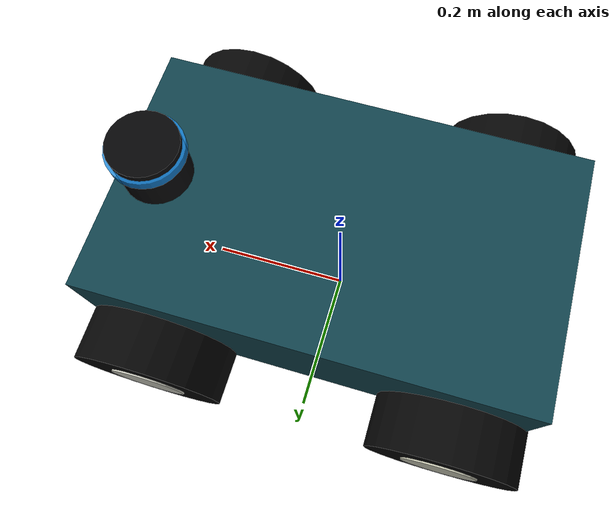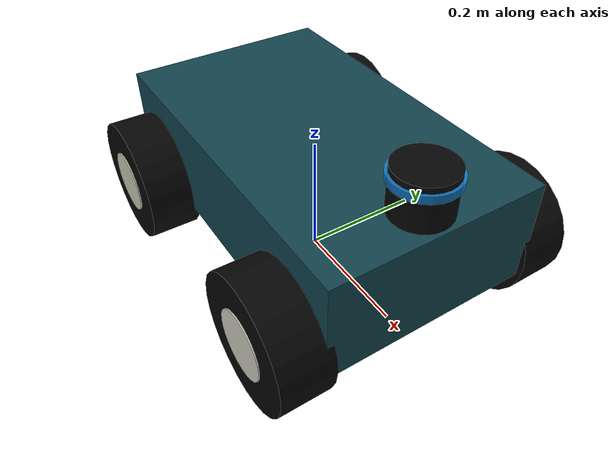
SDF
<?xml version="1.0"?>
<sdf version="1.6">
  <model name="version_car">
    <pose>0 0 0 0 0 0</pose>

    <!-- ==================== base_link (MickX4-V3 四轮差速车体) ==================== -->
    <link name="base_link">
      <pose>0 0 0.16 0 0 0</pose>
      <inertial>
        <mass>12.0</mass>
        <inertia>
          <ixx>0.11</ixx>
          <ixy>0.0</ixy>
          <ixz>0.0</ixz>
          <iyy>0.16</iyy>
          <iyz>0.0</iyz>
          <izz>0.22</izz>
        </inertia>
      </inertial>

      <collision name="base_collision">
        <geometry>
          <box>
            <size>0.58 0.34 0.16</size>
          </box>
        </geometry>
      </collision>
      <visual name="base_visual">
        <geometry>
          <box>
            <size>0.58 0.34 0.16</size>
          </box>
        </geometry>
        <material>
          <ambient>0.05 0.11 0.13 1</ambient>
          <diffuse>0.07 0.26 0.30 1</diffuse>
        </material>
      </visual>
    </link>

    <!-- ==================== 四轮 ==================== -->
    <link name="front_left_wheel">
      <pose>0.20 0.20 0.10 0 0 1.57079632679</pose>
      <inertial>
        <mass>0.55</mass>
        <inertia>
          <ixx>0.0025</ixx>
          <ixy>0.0</ixy>
          <ixz>0.0</ixz>
          <iyy>0.0038</iyy>
          <iyz>0.0</iyz>
          <izz>0.0025</izz>
        </inertia>
      </inertial>
      <visual name="tire_visual">
        <pose>0 0 0 0 1.57079632679 0</pose>
        <geometry>
          <cylinder>
            <radius>0.10</radius>
            <length>0.08</length>
          </cylinder>
        </geometry>
        <material>
          <ambient>0.02 0.02 0.02 1</ambient>
          <diffuse>0.02 0.02 0.02 1</diffuse>
        </material>
      </visual>
      <visual name="hub_visual">
        <pose>0 0 0 0 1.57079632679 0</pose>
        <geometry>
          <cylinder>
            <radius>0.050</radius>
            <length>0.084</length>
          </cylinder>
        </geometry>
        <material>
          <ambient>0.72 0.72 0.68 1</ambient>
          <diffuse>0.80 0.80 0.75 1</diffuse>
        </material>
      </visual>
      <collision name="collision">
        <pose>0 0 0 0 1.57079632679 0</pose>
        <geometry>
          <cylinder>
            <radius>0.10</radius>
            <length>0.08</length>
          </cylinder>
        </geometry>
        <surface>
          <friction>
            <ode>
              <mu>1.20</mu>
              <mu2>0.35</mu2>
              <slip1>0.0</slip1>
              <slip2>0.08</slip2>
            </ode>
          </friction>
          <contact>
            <ode>
              <kp>1e+9</kp>
              <kd>1.0</kd>
              <min_depth>0.001</min_depth>
            </ode>
          </contact>
        </surface>
      </collision>
    </link>

    <link name="front_right_wheel">
      <pose>0.20 -0.20 0.10 0 0 1.57079632679</pose>
      <inertial>
        <mass>0.55</mass>
        <inertia>
          <ixx>0.0025</ixx>
          <ixy>0.0</ixy>
          <ixz>0.0</ixz>
          <iyy>0.0038</iyy>
          <iyz>0.0</iyz>
          <izz>0.0025</izz>
        </inertia>
      </inertial>
      <visual name="tire_visual">
        <pose>0 0 0 0 1.57079632679 0</pose>
        <geometry>
          <cylinder>
            <radius>0.10</radius>
            <length>0.08</length>
          </cylinder>
        </geometry>
        <material>
          <ambient>0.02 0.02 0.02 1</ambient>
          <diffuse>0.02 0.02 0.02 1</diffuse>
        </material>
      </visual>
      <visual name="hub_visual">
        <pose>0 0 0 0 1.57079632679 0</pose>
        <geometry>
          <cylinder>
            <radius>0.050</radius>
            <length>0.084</length>
          </cylinder>
        </geometry>
        <material>
          <ambient>0.72 0.72 0.68 1</ambient>
          <diffuse>0.80 0.80 0.75 1</diffuse>
        </material>
      </visual>
      <collision name="collision">
        <pose>0 0 0 0 1.57079632679 0</pose>
        <geometry>
          <cylinder>
            <radius>0.10</radius>
            <length>0.08</length>
          </cylinder>
        </geometry>
        <surface>
          <friction>
            <ode>
              <mu>1.20</mu>
              <mu2>0.35</mu2>
              <slip1>0.0</slip1>
              <slip2>0.08</slip2>
            </ode>
          </friction>
          <contact>
            <ode>
              <kp>1e+9</kp>
              <kd>1.0</kd>
              <min_depth>0.001</min_depth>
            </ode>
          </contact>
        </surface>
      </collision>
    </link>

    <link name="rear_left_wheel">
      <pose>-0.20 0.20 0.10 0 0 1.57079632679</pose>
      <inertial>
        <mass>0.65</mass>
        <inertia>
          <ixx>0.0030</ixx>
          <ixy>0.0</ixy>
          <ixz>0.0</ixz>
          <iyy>0.0045</iyy>
          <iyz>0.0</iyz>
          <izz>0.0030</izz>
        </inertia>
      </inertial>
      <visual name="tire_visual">
        <pose>0 0 0 0 1.57079632679 0</pose>
        <geometry>
          <cylinder>
            <radius>0.10</radius>
            <length>0.08</length>
          </cylinder>
        </geometry>
        <material>
          <ambient>0.02 0.02 0.02 1</ambient>
          <diffuse>0.02 0.02 0.02 1</diffuse>
        </material>
      </visual>
      <visual name="hub_visual">
        <pose>0 0 0 0 1.57079632679 0</pose>
        <geometry>
          <cylinder>
            <radius>0.050</radius>
            <length>0.084</length>
          </cylinder>
        </geometry>
        <material>
          <ambient>0.68 0.68 0.62 1</ambient>
          <diffuse>0.78 0.78 0.70 1</diffuse>
        </material>
      </visual>
      <collision name="collision">
        <pose>0 0 0 0 1.57079632679 0</pose>
        <geometry>
          <cylinder>
            <radius>0.10</radius>
            <length>0.08</length>
          </cylinder>
        </geometry>
        <surface>
          <friction>
            <ode>
              <mu>1.20</mu>
              <mu2>0.35</mu2>
              <slip1>0.0</slip1>
              <slip2>0.08</slip2>
            </ode>
          </friction>
          <contact>
            <ode>
              <kp>1e+9</kp>
              <kd>1.0</kd>
              <min_depth>0.001</min_depth>
            </ode>
          </contact>
        </surface>
      </collision>
    </link>

    <link name="rear_right_wheel">
      <pose>-0.20 -0.20 0.10 0 0 1.57079632679</pose>
      <inertial>
        <mass>0.65</mass>
        <inertia>
          <ixx>0.0030</ixx>
          <ixy>0.0</ixy>
          <ixz>0.0</ixz>
          <iyy>0.0045</iyy>
          <iyz>0.0</iyz>
          <izz>0.0030</izz>
        </inertia>
      </inertial>
      <visual name="tire_visual">
        <pose>0 0 0 0 1.57079632679 0</pose>
        <geometry>
          <cylinder>
            <radius>0.10</radius>
            <length>0.08</length>
          </cylinder>
        </geometry>
        <material>
          <ambient>0.02 0.02 0.02 1</ambient>
          <diffuse>0.02 0.02 0.02 1</diffuse>
        </material>
      </visual>
      <visual name="hub_visual">
        <pose>0 0 0 0 1.57079632679 0</pose>
        <geometry>
          <cylinder>
            <radius>0.050</radius>
            <length>0.084</length>
          </cylinder>
        </geometry>
        <material>
          <ambient>0.68 0.68 0.62 1</ambient>
          <diffuse>0.78 0.78 0.70 1</diffuse>
        </material>
      </visual>
      <collision name="collision">
        <pose>0 0 0 0 1.57079632679 0</pose>
        <geometry>
          <cylinder>
            <radius>0.10</radius>
            <length>0.08</length>
          </cylinder>
        </geometry>
        <surface>
          <friction>
            <ode>
              <mu>1.20</mu>
              <mu2>0.35</mu2>
              <slip1>0.0</slip1>
              <slip2>0.08</slip2>
            </ode>
          </friction>
          <contact>
            <ode>
              <kp>1e+9</kp>
              <kd>1.0</kd>
              <min_depth>0.001</min_depth>
            </ode>
          </contact>
        </surface>
      </collision>
    </link>

    <!-- ==================== MID360 3D 激光雷达 link ==================== -->
    <link name="mid360_link">
      <!-- MID360 安装在 MickX4-V3 车头顶部位置 -->
      <pose>0.24 0 0.275 0 0 0</pose>
      <inertial>
        <mass>0.28</mass>
        <inertia>
          <ixx>0.00045</ixx>
          <ixy>0.0</ixy>
          <ixz>0.0</ixz>
          <iyy>0.00045</iyy>
          <iyz>0.0</iyz>
          <izz>0.0006</izz>
        </inertia>
      </inertial>

      <!-- 雷达外观：圆柱体 -->
      <collision name="lidar_collision">
        <geometry>
          <cylinder>
            <radius>0.045</radius>
            <length>0.07</length>
          </cylinder>
        </geometry>
      </collision>
      <visual name="lidar_visual">
        <geometry>
          <cylinder>
            <radius>0.045</radius>
            <length>0.07</length>
          </cylinder>
        </geometry>
        <material>
          <ambient>0.02 0.02 0.025 1</ambient>
          <diffuse>0.02 0.02 0.025 1</diffuse>
        </material>
      </visual>
      <visual name="lidar_window_visual">
        <pose>0 0 0.02 0 0 0</pose>
        <geometry>
          <cylinder>
            <radius>0.049</radius>
            <length>0.012</length>
          </cylinder>
        </geometry>
        <material>
          <ambient>0.10 0.45 0.72 0.85</ambient>
          <diffuse>0.12 0.55 0.88 0.85</diffuse>
        </material>
      </visual>

      <!-- MID360 3D 激光雷达传感器（Ray 模式，同时输出 2D LaserScan 和 3D PointCloud2） -->
      <sensor name="mid360_livox3d" type="ray">
        <pose>0 0 0 0 0 0</pose>
        <visualize>false</visualize>
        <always_on>true</always_on>
        <update_rate>10</update_rate>
        <ray>
          <scan>
            <horizontal>
              <samples>720</samples>
              <resolution>1.0</resolution>
              <min_angle>-3.14159265</min_angle>
              <max_angle>3.14159265</max_angle>
            </horizontal>
            <vertical>
              <samples>32</samples>
              <resolution>1.0</resolution>
              <min_angle>-0.43633231</min_angle>
              <max_angle>0.43633231</max_angle>
            </vertical>
          </scan>
          <range>
            <min>0.10</min>
            <max>18.0</max>
            <resolution>0.02</resolution>
          </range>
          <noise>
            <type>gaussian</type>
            <mean>0.0</mean>
            <stddev>0.015</stddev>
          </noise>
        </ray>
        <!-- 3D PointCloud2 输出（用于 FAST-LIO） -->
        <plugin name="mid360_points" filename="libgazebo_ros_ray_sensor.so">
          <ros>
            <remapping>~/out:=mid360_points</remapping>
          </ros>
          <output_type>sensor_msgs/PointCloud2</output_type>
          <frame_name>mid360_link</frame_name>
        </plugin>
        <!-- 2D LaserScan 输出（可选，保留给其他用途） -->
        <plugin name="mid360_laserscan" filename="libgazebo_ros_ray_sensor.so">
          <ros>
            <remapping>~/out:=scan</remapping>
          </ros>
          <output_type>sensor_msgs/LaserScan</output_type>
          <frame_name>mid360_link</frame_name>
        </plugin>
      </sensor>

      <!-- IMU 传感器（与 MID360 在同一 link 上，外参为 Identity） -->
      <sensor name="mid360_imu" type="imu">
        <pose>0 0 0 0 0 0</pose>
        <always_on>true</always_on>
        <visualize>false</visualize>
        <update_rate>200</update_rate>
        <imu>
          <angular_velocity>
            <x>
              <noise type="gaussian">
                <mean>0.0</mean>
                <stddev>0.0005</stddev>
              </noise>
            </x>
            <y>
              <noise type="gaussian">
                <mean>0.0</mean>
                <stddev>0.0005</stddev>
              </noise>
            </y>
            <z>
              <noise type="gaussian">
                <mean>0.0</mean>
                <stddev>0.0005</stddev>
              </noise>
            </z>
          </angular_velocity>
          <linear_acceleration>
            <x>
              <noise type="gaussian">
                <mean>0.0</mean>
                <stddev>0.01</stddev>
              </noise>
            </x>
            <y>
              <noise type="gaussian">
                <mean>0.0</mean>
                <stddev>0.01</stddev>
              </noise>
            </y>
            <z>
              <noise type="gaussian">
                <mean>0.0</mean>
                <stddev>0.01</stddev>
              </noise>
            </z>
          </linear_acceleration>
        </imu>
        <plugin name="mid360_imu_plugin" filename="libgazebo_ros_imu_sensor.so">
          <ros>
            <remapping>~/out:=imu</remapping>
          </ros>
          <frame_name>mid360_link</frame_name>
        </plugin>
      </sensor>
    </link>

    <!-- ==================== 关节：四轮差速，前轮不再转向 ==================== -->
    <joint name="front_left_wheel_joint" type="revolute">
      <parent>base_link</parent>
      <child>front_left_wheel</child>
      <axis>
        <xyz>1 0 0</xyz>
        <limit>
          <lower>-1.79769e+308</lower>
          <upper>1.79769e+308</upper>
        </limit>
        <dynamics>
          <friction>0.02</friction>
        </dynamics>
      </axis>
    </joint>

    <joint name="front_right_wheel_joint" type="revolute">
      <parent>base_link</parent>
      <child>front_right_wheel</child>
      <axis>
        <xyz>1 0 0</xyz>
        <limit>
          <lower>-1.79769e+308</lower>
          <upper>1.79769e+308</upper>
        </limit>
        <dynamics>
          <friction>0.02</friction>
        </dynamics>
      </axis>
    </joint>

    <joint name="rear_left_wheel_joint" type="revolute">
      <parent>base_link</parent>
      <child>rear_left_wheel</child>
      <axis>
        <xyz>1 0 0</xyz>
        <limit>
          <lower>-1.79769e+308</lower>
          <upper>1.79769e+308</upper>
        </limit>
        <dynamics>
          <friction>0.02</friction>
        </dynamics>
      </axis>
    </joint>

    <joint name="rear_right_wheel_joint" type="revolute">
      <parent>base_link</parent>
      <child>rear_right_wheel</child>
      <axis>
        <xyz>1 0 0</xyz>
        <limit>
          <lower>-1.79769e+308</lower>
          <upper>1.79769e+308</upper>
        </limit>
        <dynamics>
          <friction>0.02</friction>
        </dynamics>
      </axis>
    </joint>

    <!-- MID360 固定在 base_link 上 -->
    <joint name="mid360_fixed_joint" type="fixed">
      <parent>base_link</parent>
      <child>mid360_link</child>
    </joint>

    <!-- ==================== 运动插件 ==================== -->
    <!-- 四轮滑移/差速驱动：left=(vx-wz*0.40/2)/0.10, right=(vx+wz*0.40/2)/0.10 -->
    <plugin name="skid_steer_drive" filename="libgazebo_ros_diff_drive.so">
      <ros>
        <remapping>cmd_vel:=cmd_vel</remapping>
        <remapping>odom:=odom</remapping>
      </ros>

      <update_rate>100.0</update_rate>
      <num_wheel_pairs>2</num_wheel_pairs>

      <left_joint>front_left_wheel_joint</left_joint>
      <right_joint>front_right_wheel_joint</right_joint>
      <left_joint>rear_left_wheel_joint</left_joint>
      <right_joint>rear_right_wheel_joint</right_joint>

      <wheel_separation>0.40</wheel_separation>
      <wheel_separation>0.40</wheel_separation>
      <wheel_diameter>0.20</wheel_diameter>
      <wheel_diameter>0.20</wheel_diameter>

      <max_wheel_torque>40.0</max_wheel_torque>
      <max_wheel_acceleration>40.0</max_wheel_acceleration>

      <command_topic>cmd_vel</command_topic>

      <publish_odom>true</publish_odom>
      <publish_odom_tf>true</publish_odom_tf>
      <publish_wheel_tf>false</publish_wheel_tf>

      <odometry_topic>odom</odometry_topic>
      <odometry_frame>odom</odometry_frame>
      <robot_base_frame>base_link</robot_base_frame>

      <covariance_x>0.0001</covariance_x>
      <covariance_y>0.0001</covariance_y>
      <covariance_yaw>0.01</covariance_yaw>
    </plugin>
  </model>
</sdf>
